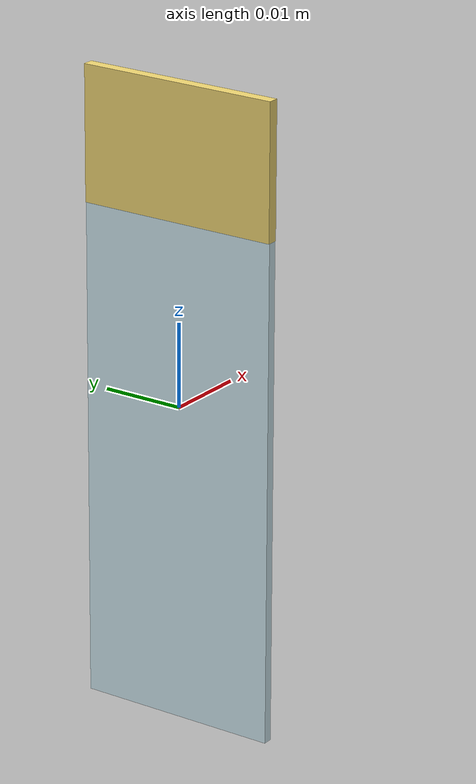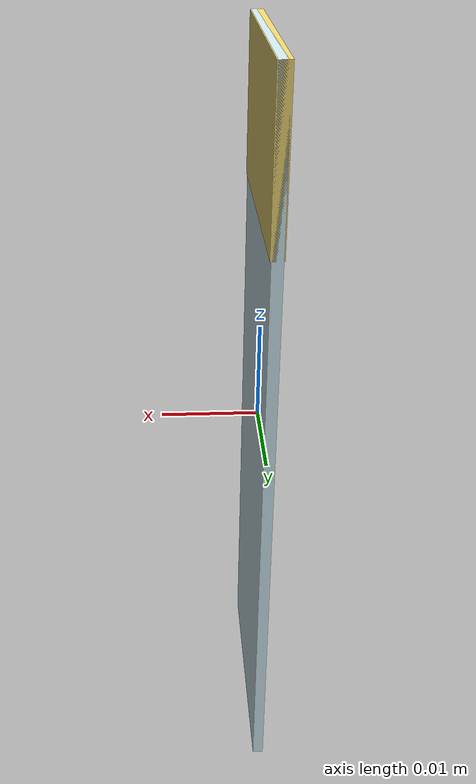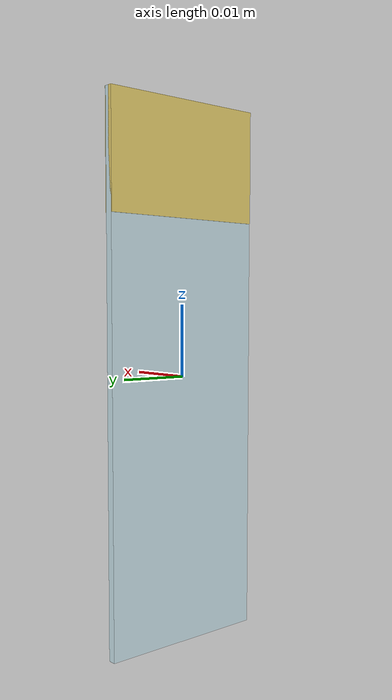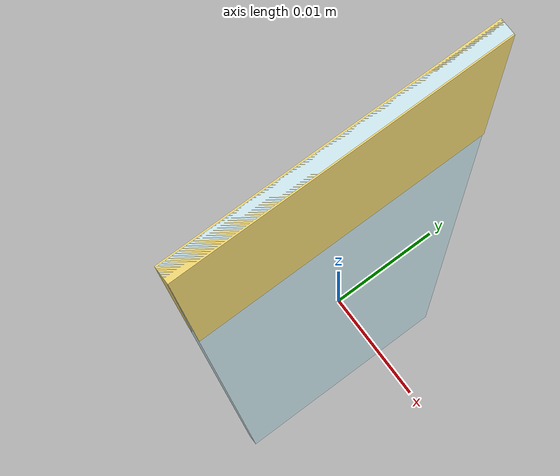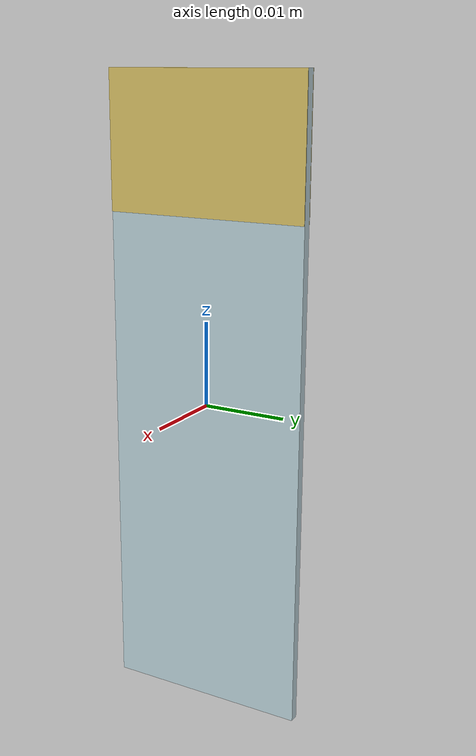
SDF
<?xml version="1.0" ?>
<sdf version="1.7">
  <model name="laminilla">
    <link name="link">

      <inertial>
        <mass>0.00515</mass>
        <inertia>
          <ixx>2.7270e-06</ixx>
          <ixy>0</ixy>
          <ixz>0</ixz>
          <iyy>2.4657e-06</iyy>
          <iyz>0</iyz>
          <izz>2.6228e-07</izz>
        </inertia>
      </inertial>

      <collision name="collision">
        <geometry>
          <box><size>0.0011 0.0247 0.0758</size></box>
        </geometry>
        <surface>
          <friction>
            <ode>
              <mu>1.0</mu>
              <mu2>1.0</mu2>
            </ode>
          </friction>
          <contact>
            <ode>
              <kp>1e5</kp>
              <kd>50</kd>
              <min_depth>0.0002</min_depth>
              <max_vel>0.01</max_vel>
            </ode>
          </contact>
          <bounce><restitution_coefficient>0</restitution_coefficient></bounce>
        </surface>
        <max_contacts>10</max_contacts>
      </collision>

      <visual name="visual">
        <geometry>
          <box><size>0.0011 0.0247 0.0758</size></box>
        </geometry>
        <material>
          <ambient>0.70 0.82 0.85 1</ambient>
          <diffuse>0.82 0.92 0.95 1</diffuse>
          <specular>0.4 0.4 0.4 1</specular>
        </material>
      </visual>

      <!-- Etiqueta esmerilada, para ver la orientacion de un vistazo -->
      <visual name="etiqueta">
        <pose>0 0 0.0299 0 0 0</pose>
        <geometry>
          <box><size>0.0013 0.0247 0.0160</size></box>
        </geometry>
        <material>
          <ambient>0.85 0.75 0.35 1</ambient>
          <diffuse>0.95 0.85 0.45 1</diffuse>
        </material>
      </visual>

    </link>
  </model>
</sdf>
